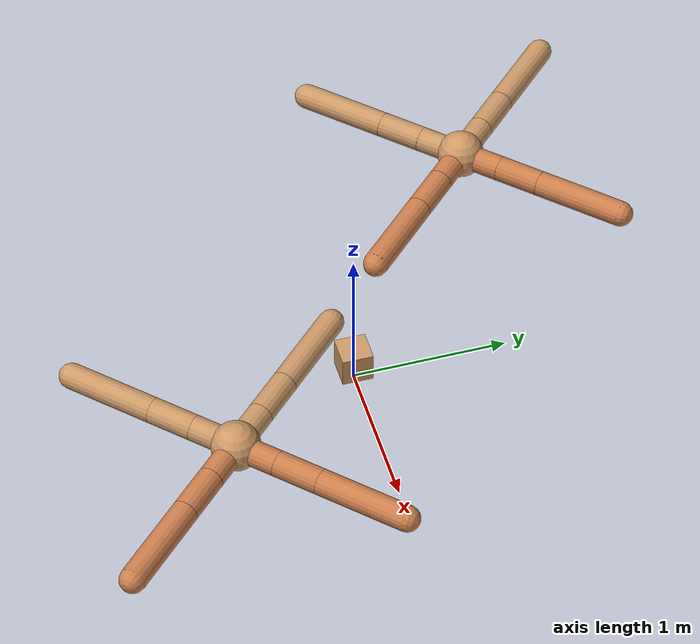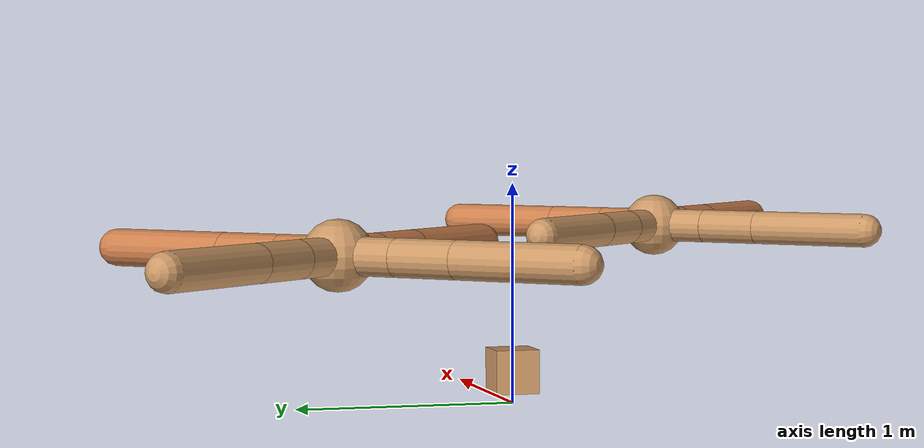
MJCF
<mujoco model="ant">
  <compiler angle="degree" coordinate="local" inertiafromgeom="true"/>
  <option integrator="RK4" timestep="0.01"/>
  <flag warmstart="disabled"/>
  <custom>
    <numeric data="0.0 0.0 0.55 1.0 0.0 0.0 0.0 0.0 1.0 0.0 -1.0 0.0 -1.0 0.0 1.0" name="init_qpos"/>
  </custom>
  <default>
    <joint armature="1" damping="1" limited="true"/>
    <geom conaffinity="1" condim="3" density="5.0" friction="0.15 0.1 0.1" margin="0.01" rgba="0.8 0.6 0.4 1"/>
  </default>
  <worldbody>
    <body name="torso" pos="-1 1 0.75">
      <geom name="torso_geom" pos="0 0 0" size="0.15" type="sphere"/>
      <joint armature="0" damping="0" limited="false" margin="0.01" name="root" pos="0 0 0" type="free"/>
      <body name="front_left_leg" pos="0 0 0">
        <geom fromto="0.0 0.0 0.0 0.2 0.2 0.0" name="aux_1_geom" size="0.08" type="capsule" rgba=".8 .5 .3 1"/>
        <body name="aux_1" pos="0.2 0.2 0">
          <joint axis="0 0 1" name="hip_1" pos="0.0 0.0 0.0" range="-40 40" type="hinge"/>
          <geom fromto="0.0 0.0 0.0 0.2 0.2 0.0" name="left_leg_geom" size="0.08" type="capsule" rgba=".8 .5 .3 1"/>
          <body pos="0.2 0.2 0" name="front_left_foot">
            <joint axis="-1 1 0" name="ankle_1" pos="0.0 0.0 0.0" range="30 100" type="hinge"/>
            <geom fromto="0.0 0.0 0.0 0.4 0.4 0.0" name="left_ankle_geom" size="0.08" type="capsule" rgba=".8 .5 .3 1"/>
          </body>
        </body>
      </body>
      <body name="front_right_leg" pos="0 0 0">
        <geom fromto="0.0 0.0 0.0 -0.2 0.2 0.0" name="aux_2_geom" size="0.08" type="capsule"/>
        <body name="aux_2" pos="-0.2 0.2 0">
          <joint axis="0 0 1" name="hip_2" pos="0.0 0.0 0.0" range="-40 40" type="hinge"/>
          <geom fromto="0.0 0.0 0.0 -0.2 0.2 0.0" name="right_leg_geom" size="0.08" type="capsule"/>
          <body pos="-0.2 0.2 0" name="front_right_foot">
            <joint axis="1 1 0" name="ankle_2" pos="0.0 0.0 0.0" range="-100 -30" type="hinge"/>
            <geom fromto="0.0 0.0 0.0 -0.4 0.4 0.0" name="right_ankle_geom" size="0.08" type="capsule"/>
          </body>
        </body>
      </body>
      <body name="left_back_leg" pos="0 0 0">
        <geom fromto="0.0 0.0 0.0 -0.2 -0.2 0.0" name="aux_3_geom" size="0.08" type="capsule"/>
        <body name="aux_3" pos="-0.2 -0.2 0">
          <joint axis="0 0 1" name="hip_3" pos="0.0 0.0 0.0" range="-40 40" type="hinge"/>
          <geom fromto="0.0 0.0 0.0 -0.2 -0.2 0.0" name="back_leg_geom" size="0.08" type="capsule"/>
          <body pos="-0.2 -0.2 0" name="left_back_foot">
            <joint axis="-1 1 0" name="ankle_3" pos="0.0 0.0 0.0" range="-100 -30" type="hinge"/>
            <geom fromto="0.0 0.0 0.0 -0.4 -0.4 0.0" name="third_ankle_geom" size="0.08" type="capsule"/>
          </body>
        </body>
      </body>
      <body name="right_back_leg" pos="0 0 0"> <!-- green to distant red -->
        <geom fromto="0.0 0.0 0.0 0.2 -0.2 0.0" name="aux_4_geom" size="0.08" type="capsule" rgba=".8 .5 .3 1"/>
        <body name="aux_4" pos="0.2 -0.2 0">
          <joint axis="0 0 1" name="hip_4" pos="0.0 0.0 0.0" range="-40 40" type="hinge"/>
          <geom fromto="0.0 0.0 0.0 0.2 -0.2 0.0" name="rightback_leg_geom" size="0.08" type="capsule" rgba=".8 .5 .3 1"/>
          <body pos="0.2 -0.2 0" name="right_back_foot">
            <joint axis="1 1 0" name="ankle_4" pos="0.0 0.0 0.0" range="30 100" type="hinge"/>
            <geom fromto="0.0 0.0 0.0 0.4 -0.4 0.0" name="fourth_ankle_geom" size="0.08" type="capsule" rgba=".8 .5 .3 1"/>
          </body>
        </body>
      </body>
    </body>

    <body name="torso2" pos="1 -1 0.75">
      <geom name="torso_geom2" pos="0 0 0" size="0.15" type="sphere"/>
      <body name="front_left_leg2" pos="0 0 0">
        <geom fromto="0.0 0.0 0.0 0.2 0.2 0.0" name="aux_1_geom2" size="0.08" type="capsule" rgba=".8 .5 .3 1"/>
        <body name="aux_12" pos="0.2 0.2 0">
          <joint axis="0 0 1" name="hip_12" pos="0.0 0.0 0.0" range="-40 40" type="hinge"/>
          <geom fromto="0.0 0.0 0.0 0.2 0.2 0.0" name="left_leg_geom2" size="0.08" type="capsule" rgba=".8 .5 .3 1"/>
          <body pos="0.2 0.2 0" name="front_left_foot2">
            <joint axis="-1 1 0" name="ankle_12" pos="0.0 0.0 0.0" range="30 100" type="hinge"/>
            <geom fromto="0.0 0.0 0.0 0.4 0.4 0.0" name="left_ankle_geom2" size="0.08" type="capsule" rgba=".8 .5 .3 1"/>
          </body>
        </body>
      </body>
      <body name="front_right_leg2" pos="0 0 0">
        <geom fromto="0.0 0.0 0.0 -0.2 0.2 0.0" name="aux_2_geom2" size="0.08" type="capsule"/>
        <body name="aux_22" pos="-0.2 0.2 0">
          <joint axis="0 0 1" name="hip_22" pos="0.0 0.0 0.0" range="-40 40" type="hinge"/>
          <geom fromto="0.0 0.0 0.0 -0.2 0.2 0.0" name="right_leg_geom2" size="0.08" type="capsule"/>
          <body pos="-0.2 0.2 0" name="front_right_foot2">
            <joint axis="1 1 0" name="ankle_22" pos="0.0 0.0 0.0" range="-100 -30" type="hinge"/>
            <geom fromto="0.0 0.0 0.0 -0.4 0.4 0.0" name="right_ankle_geom2" size="0.08" type="capsule"/>
          </body>
        </body>
      </body>
      <body name="left_back_leg2" pos="0 0 0">
        <geom fromto="0.0 0.0 0.0 -0.2 -0.2 0.0" name="aux_3_geom2" size="0.08" type="capsule"/>
        <body name="aux_32" pos="-0.2 -0.2 0">
          <joint axis="0 0 1" name="hip_32" pos="0.0 0.0 0.0" range="-40 40" type="hinge"/>
          <geom fromto="0.0 0.0 0.0 -0.2 -0.2 0.0" name="back_leg_geom2" size="0.08" type="capsule"/>
          <body pos="-0.2 -0.2 0" name="left_back_foot2">
            <joint axis="-1 1 0" name="ankle_32" pos="0.0 0.0 0.0" range="-100 -30" type="hinge"/>
            <geom fromto="0.0 0.0 0.0 -0.4 -0.4 0.0" name="third_ankle_geom2" size="0.08" type="capsule"/>
          </body>
        </body>
      </body>
      <body name="right_back_leg2" pos="0 0 0"> <!-- green to distant red -->
        <geom fromto="0.0 0.0 0.0 0.2 -0.2 0.0" name="aux_4_geom2" size="0.08" type="capsule" rgba=".8 .5 .3 1"/>
        <body name="aux_42" pos="0.2 -0.2 0">
          <joint axis="0 0 1" name="hip_42" pos="0.0 0.0 0.0" range="-40 40" type="hinge"/>
          <geom fromto="0.0 0.0 0.0 0.2 -0.2 0.0" name="rightback_leg_geom2" size="0.08" type="capsule" rgba=".8 .5 .3 1"/>
          <body pos="0.2 -0.2 0" name="right_back_foot2">
            <joint axis="1 1 0" name="ankle_42" pos="0.0 0.0 0.0" range="30 100" type="hinge"/>
            <geom fromto="0.0 0.0 0.0 0.4 -0.4 0.0" name="fourth_ankle_geom2" size="0.08" type="capsule" rgba=".8 .5 .3 1"/>
          </body>
        </body>
      </body>
    </body>

    <body name="cube" pos="0 0 0.15" condim="3">
      <geom name="cube_1" size="0.1 0.1 0.1" type="box"/>
    </body>

    </worldbody>
  <actuator>
    <motor ctrllimited="true" ctrlrange="-1.0 1.0" joint="hip_4" gear="150"/>
    <motor ctrllimited="true" ctrlrange="-1.0 1.0" joint="ankle_4" gear="150"/>
    <motor ctrllimited="true" ctrlrange="-1.0 1.0" joint="hip_1" gear="150"/>
    <motor ctrllimited="true" ctrlrange="-1.0 1.0" joint="ankle_1" gear="150"/>
    <motor ctrllimited="true" ctrlrange="-1.0 1.0" joint="hip_2" gear="150"/>
    <motor ctrllimited="true" ctrlrange="-1.0 1.0" joint="ankle_2" gear="150"/>
    <motor ctrllimited="true" ctrlrange="-1.0 1.0" joint="hip_3" gear="150"/>
    <motor ctrllimited="true" ctrlrange="-1.0 1.0" joint="ankle_3" gear="150"/>

    <motor ctrllimited="true" ctrlrange="-1.0 1.0" joint="hip_42" gear="150"/>
    <motor ctrllimited="true" ctrlrange="-1.0 1.0" joint="ankle_42" gear="150"/>
    <motor ctrllimited="true" ctrlrange="-1.0 1.0" joint="hip_12" gear="150"/>
    <motor ctrllimited="true" ctrlrange="-1.0 1.0" joint="ankle_12" gear="150"/>
    <motor ctrllimited="true" ctrlrange="-1.0 1.0" joint="hip_22" gear="150"/>
    <motor ctrllimited="true" ctrlrange="-1.0 1.0" joint="ankle_22" gear="150"/>
    <motor ctrllimited="true" ctrlrange="-1.0 1.0" joint="hip_32" gear="150"/>
    <motor ctrllimited="true" ctrlrange="-1.0 1.0" joint="ankle_32" gear="150"/>
  </actuator>
</mujoco>
